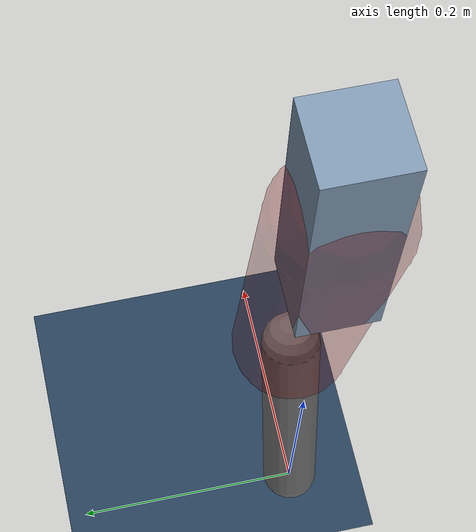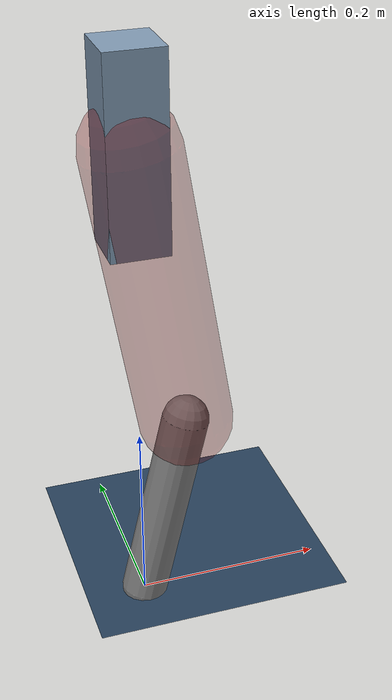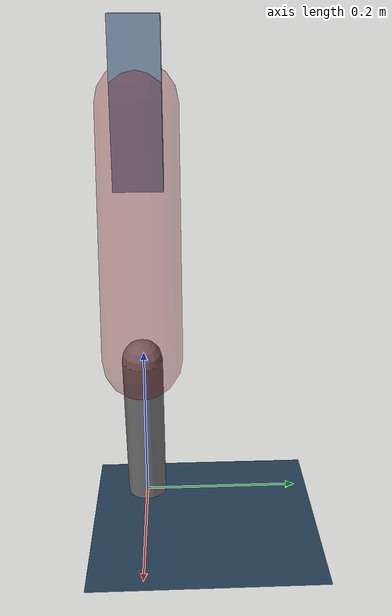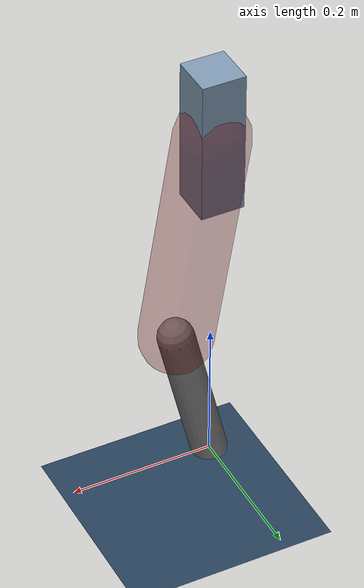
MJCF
<mujoco model="Hopper2D">
	<compiler inertiafromgeom="true" angle="radian" />
	<option timestep="0.001" integrator="implicit" cone="elliptic" solver="Newton" tolerance="1e-10" />

	<default>
		<geom contype="1" conaffinity="1" condim="3" friction="2 0.005 0.0001" solref="0.005 1" />
		<joint limited="true" damping="0.1" />
	</default>

	<asset>
		<texture name="skybox" type="skybox" builtin="gradient" rgb1=".4 .6 .8" rgb2="0 0 0" width="800" height="800" />
		<texture name="grid" type="2d" builtin="checker" rgb1=".1 .2 .3" rgb2=".2 .3 .4" width="300" height="300" mark="edge" markrgb=".2 .3 .4" />
		<material name="ground" texture="grid" texrepeat="1 1" texuniform="true" reflectance="0.1" />
		<material name="leg" rgba="0.5 0.6 0.7 1" />
	</asset>

	<worldbody>

		<geom name="floor" type="plane" size="5 5 0.25" material="ground" />

		<light directional="false" diffuse="0.8 0.8 0.8" specular="0.3 0.3 0.3" pos="0 0 2" dir="0 0 -1" />
		<light mode="targetbodycom" target="base" directional="false" diffuse="0.8 0.8 0.8" specular="0.3 0.3 0.3" pos="0 0 2" dir="0 0 -1" />

		<camera name="fixed" pos="0 -2 1" xyaxes="1 0 0 0 0 1" />
		<camera name="tracking" mode="trackcom" pos="0 -3 1" />

		<body name="root" pos="0 0 0.5177179276424659">
			<joint name="slide_x" type="slide" axis="1 0 0" range="-100 100" />
			<joint name="slide_z" type="slide" axis="0 0 1" range="0 10" />

			<body name="base" pos="0 0 0">
				<geom name="torso" type="box" size="0.03 0.03 0.1" mass="2.2359999999999998" material="leg" />

				<body name="link1" pos="0 0 0" euler="0 1.4071422136134946 0">
					<joint type="hinge" axis="0 -1 0" pos="0 0 0" name="hinge1" limited="true" range="-3.14 3.14" stiffness="0" damping="0.1" />
					<geom name="thigh" type="capsule" fromto="0 0 0 0.3089810706634315 0 0" size="0.05" rgba="0.5 0 0 0.3" mass="1.0131469978576082" />

					<body name="link2" pos="0.3089810706634315 0 0" euler="0 0.3958780482914898 0">
						<joint type="hinge" axis="0 -1 0" pos="0 0 0" name="hinge2" limited="true" range="-3.14 3.14" stiffness="0" damping="0.1" />
						<geom name="shank" type="capsule" fromto="0 0 0 0.21873685697903444 0 0" size="0.025" mass="0.41658948558322756" />

					</body>
				</body>
			</body>
		</body>
	</worldbody>

	<actuator>
		<motor name="torque1" joint="hinge1" ctrlrange="-46.35349426955618 46.35349426955618" ctrllimited="true" gear="1" />
		<motor name="torque2" joint="hinge2" ctrlrange="-85.74090362793403 85.74090362793403" ctrllimited="true" gear="1" />
	</actuator>
</mujoco>
